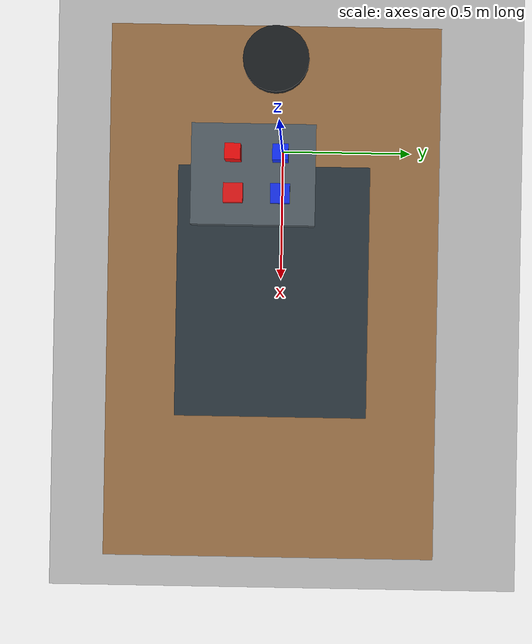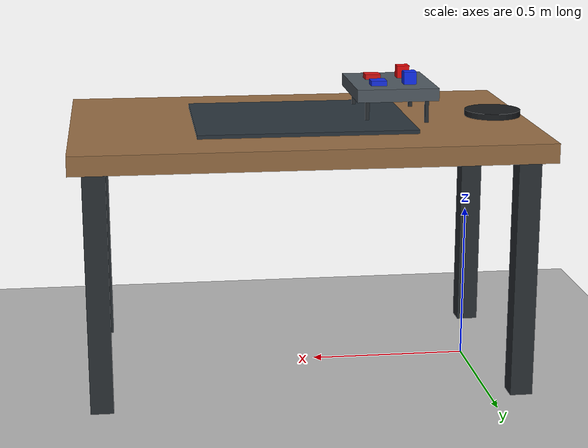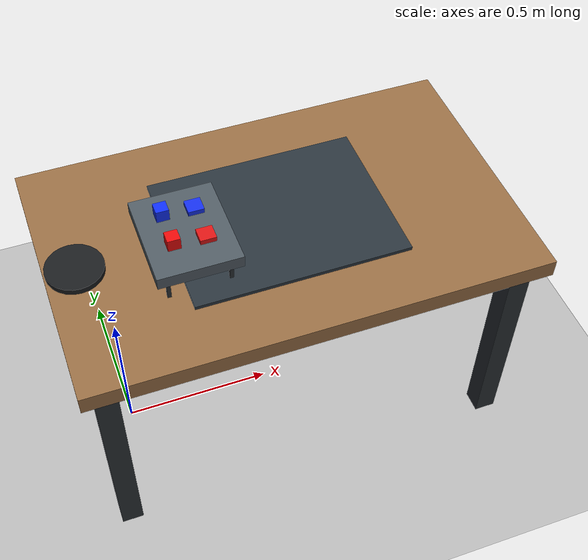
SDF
<?xml version="1.0"?>
<sdf version="1.6">
  <world name="sorting_workcell_dual_rgb">
    <!-- Explicit, reversible fixed-joint grasp.  It is enabled by the task
         only after a close action and released before opening at the zone. -->
    <plugin name="grasp_attachment" filename="libgazebo_classic_grasp_attachment.so">
      <ros><namespace>/</namespace></ros>
      <parent_model>el_a3</parent_model>
      <parent_link>l5_l6_urdf_asm</parent_link>
      <target_model>red_cube</target_model>
      <target_model>blue_cube</target_model>
      <max_distance_m>0.250</max_distance_m>
    </plugin>
    <physics type="ode">
      <max_step_size>0.001</max_step_size>
      <real_time_update_rate>1000</real_time_update_rate>
      <ode>
        <solver>
          <type>quick</type>
          <iters>200</iters>
          <sor>1.3</sor>
        </solver>
        <constraints>
          <cfm>0.0</cfm>
          <erp>0.2</erp>
          <contact_max_correcting_vel>0.020</contact_max_correcting_vel>
          <contact_surface_layer>0.0005</contact_surface_layer>
        </constraints>
      </ode>
    </physics>
    <gravity>0 0 -9.81</gravity>
    <!-- Read-only Gazebo truth used by the task's physical-verification
         guard.  It publishes model poses only; no task component writes to
         Gazebo state or uses it to move/attach a cube. -->
    <plugin name="gazebo_ros_state" filename="libgazebo_ros_state.so">
      <ros><namespace>/gazebo</namespace></ros>
      <update_rate>30.0</update_rate>
    </plugin>
    <scene>
      <ambient>0.55 0.55 0.55 1</ambient>
      <background>0.82 0.86 0.90 1</background>
      <shadows>true</shadows>
    </scene>
    <light name="sun" type="directional">
      <cast_shadows>true</cast_shadows>
      <pose>0 0 5 0 0 0</pose>
      <diffuse>0.9 0.9 0.9 1</diffuse>
      <direction>-0.4 0.2 -0.9</direction>
    </light>

    <model name="ground_plane">
      <static>true</static>
      <link name="ground">
        <collision name="collision"><geometry><plane><normal>0 0 1</normal><size>8 8</size></plane></geometry></collision>
        <visual name="visual"><geometry><plane><normal>0 0 1</normal><size>8 8</size></plane></geometry><material><ambient>0.70 0.70 0.70 1</ambient></material></visual>
      </link>
    </model>
    <model name="workbench">
      <static>true</static>
      <link name="table">
        <collision name="top_collision"><pose>0.55 0 0.78 0 0 0</pose><geometry><box><size>1.45 0.90 0.06</size></box></geometry></collision>
        <visual name="top"><pose>0.55 0 0.78 0 0 0</pose><geometry><box><size>1.45 0.90 0.06</size></box></geometry><material><ambient>0.58 0.42 0.26 1</ambient></material></visual>
        <visual name="leg_front_left"><pose>-0.10 -0.37 0.375 0 0 0</pose><geometry><box><size>0.07 0.07 0.75</size></box></geometry><material><ambient>0.16 0.18 0.20 1</ambient></material></visual>
        <visual name="leg_back_left"><pose>-0.10 0.37 0.375 0 0 0</pose><geometry><box><size>0.07 0.07 0.75</size></box></geometry><material><ambient>0.16 0.18 0.20 1</ambient></material></visual>
        <visual name="leg_front_right"><pose>1.20 -0.37 0.375 0 0 0</pose><geometry><box><size>0.07 0.07 0.75</size></box></geometry><material><ambient>0.16 0.18 0.20 1</ambient></material></visual>
        <visual name="leg_back_right"><pose>1.20 0.37 0.375 0 0 0</pose><geometry><box><size>0.07 0.07 0.75</size></box></geometry><material><ambient>0.16 0.18 0.20 1</ambient></material></visual>
      </link>
    </model>
    <model name="robot_mount">
      <static>true</static><pose>-0.08 0 0.82 0 0 0</pose>
      <link name="mount"><visual name="visual"><geometry><cylinder><radius>0.09</radius><length>0.02</length></cylinder></geometry><material><ambient>0.10 0.11 0.12 1</ambient></material></visual></link>
    </model>
    <model name="work_mat">
      <static>true</static><pose>0.55 0 0.816 0 0 0</pose>
      <link name="mat"><visual name="visual"><geometry><box><size>0.68 0.52 0.012</size></box></geometry><material><ambient>0.16 0.20 0.23 1</ambient></material></visual></link>
    </model>

    <model name="sorting_platform">
      <!-- Its top is 12 cm above the main workbench, not the former 22 cm
           high platform.  That keeps a centred, vertical gripper grasp in
           the A3's reachable TCP-height band. -->
      <static>true</static><pose>0.250 -0.050 0.9015 0 0 0</pose>
      <link name="deck">
        <collision name="deck_collision"><geometry><box><size>0.26 0.32 0.04</size></box></geometry><surface><friction><ode><mu>1.2</mu><mu2>1.2</mu2></ode></friction></surface></collision>
        <visual name="deck_visual"><geometry><box><size>0.26 0.32 0.04</size></box></geometry><material><ambient>0.26 0.30 0.33 1</ambient><diffuse>0.31 0.35 0.38 1</diffuse></material></visual>
        <visual name="rear_left_support"><pose>0.095 0.135 -0.07075 0 0 0</pose><geometry><box><size>0.012 0.012 0.1015</size></box></geometry><material><ambient>0.16 0.18 0.20 1</ambient></material></visual>
        <visual name="rear_right_support"><pose>0.095 -0.135 -0.07075 0 0 0</pose><geometry><box><size>0.012 0.012 0.1015</size></box></geometry><material><ambient>0.16 0.18 0.20 1</ambient></material></visual>
        <visual name="far_left_support"><pose>-0.095 0.135 -0.07075 0 0 0</pose><geometry><box><size>0.012 0.012 0.1015</size></box></geometry><material><ambient>0.16 0.18 0.20 1</ambient></material></visual>
        <visual name="far_right_support"><pose>-0.095 -0.135 -0.07075 0 0 0</pose><geometry><box><size>0.012 0.012 0.1015</size></box></geometry><material><ambient>0.16 0.18 0.20 1</ambient></material></visual>
      </link>
    </model>

    <model name="red_target_zone">
      <static>true</static><pose>0.300 -0.100 0.9295 0 0 0</pose>
      <link name="zone"><visual name="visual"><geometry><box><size>0.05 0.05 0.016</size></box></geometry><material><ambient>0.72 0.06 0.06 1</ambient><diffuse>0.85 0.08 0.08 1</diffuse></material></visual></link>
    </model>
    <model name="red_cube">
      <static>false</static><pose>0.200 -0.100 0.9435 0 0 0</pose>
      <link name="link">
        <inertial><mass>0.030</mass><inertia><ixx>0.000008000</ixx><iyy>0.000008000</iyy><izz>0.000008000</izz></inertia></inertial>
        <collision name="collision"><geometry><box><size>0.040 0.040 0.040</size></box></geometry><surface><friction><ode><mu>8.0</mu><mu2>8.0</mu2></ode><torsional><coefficient>0.3</coefficient></torsional></friction><contact><ode><kp>12000</kp><kd>120</kd><min_depth>0.0005</min_depth><max_vel>0.010</max_vel></ode></contact></surface></collision>
        <visual name="visual"><geometry><box><size>0.040 0.040 0.040</size></box></geometry><material><ambient>0.90 0.04 0.04 1</ambient><diffuse>0.90 0.04 0.04 1</diffuse></material></visual>
      </link>
    </model>
    <model name="blue_target_zone">
      <static>true</static><pose>0.300 0.020 0.9295 0 0 0</pose>
      <link name="zone"><visual name="visual"><geometry><box><size>0.05 0.05 0.016</size></box></geometry><material><ambient>0.06 0.12 0.72 1</ambient><diffuse>0.08 0.18 0.90 1</diffuse></material></visual></link>
    </model>
    <model name="blue_cube">
      <static>false</static><pose>0.200 0.020 0.9435 0 0 0</pose>
      <link name="link">
        <inertial><mass>0.030</mass><inertia><ixx>0.000008000</ixx><iyy>0.000008000</iyy><izz>0.000008000</izz></inertia></inertial>
        <collision name="collision"><geometry><box><size>0.040 0.040 0.040</size></box></geometry><surface><friction><ode><mu>8.0</mu><mu2>8.0</mu2></ode><torsional><coefficient>0.3</coefficient></torsional></friction><contact><ode><kp>12000</kp><kd>120</kd><min_depth>0.0005</min_depth><max_vel>0.010</max_vel></ode></contact></surface></collision>
        <visual name="visual"><geometry><box><size>0.040 0.040 0.040</size></box></geometry><material><ambient>0.04 0.10 0.90 1</ambient><diffuse>0.06 0.18 0.95 1</diffuse></material></visual>
      </link>
    </model>
    <model name="camera_main">
      <static>true</static><pose>1.00 -0.75 1.30 0 0.491101 2.117585</pose>
      <link name="camera_main_link">
        <sensor name="camera_main_sensor" type="camera">
          <always_on>true</always_on><update_rate>30</update_rate><visualize>false</visualize>
          <camera><horizontal_fov>1.35</horizontal_fov><image><width>640</width><height>480</height><format>R8G8B8</format></image><clip><near>0.10</near><far>5.0</far></clip></camera>
          <plugin name="camera_main_ros" filename="libgazebo_ros_camera.so"><ros><namespace>/</namespace></ros><camera_name>camera_main</camera_name><frame_name>camera_main_link</frame_name></plugin>
        </sensor>
      </link>
    </model>
  </world>
</sdf>
